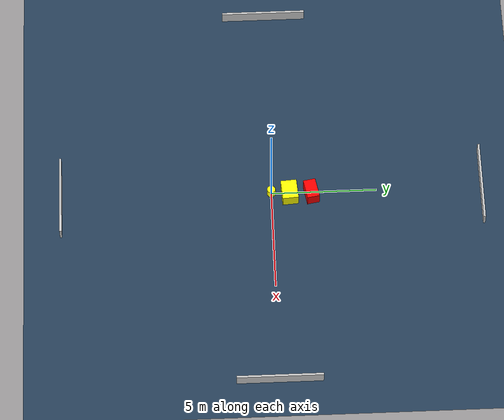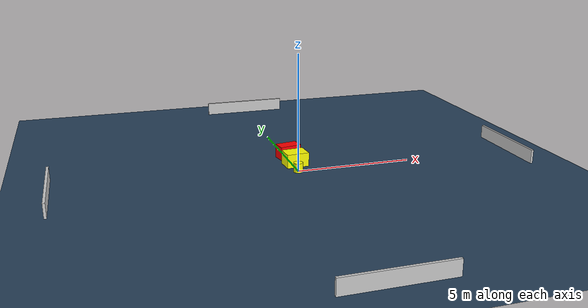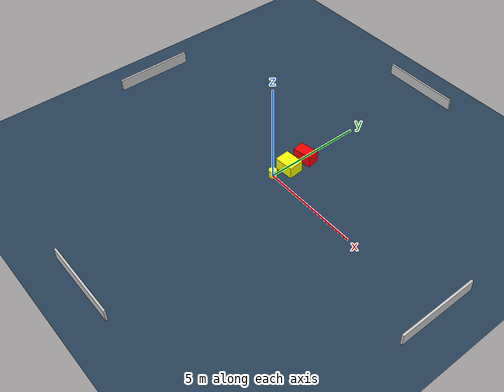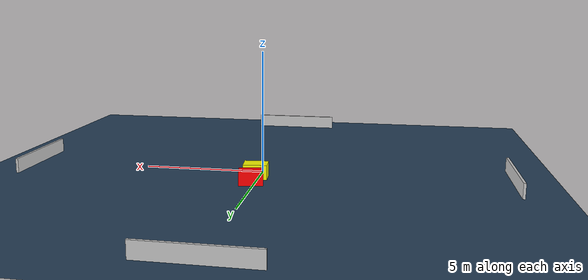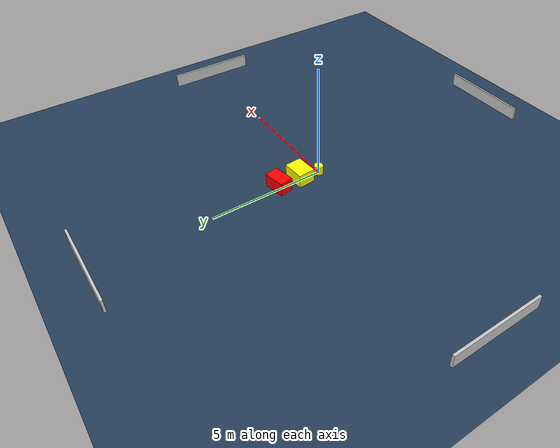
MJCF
<?xml version="1.0" ?>
<mujoco model="generated_environment">
  <option timestep="0.01" integrator="RK4" cone="elliptic"/>
  <default>
    <geom density="1"/>
  </default>
  <asset>
    <texture builtin="gradient" height="3072" name="skybox" rgb1="0.3 0.5 0.7" rgb2="0 0 0" type="skybox" width="512"/>
    <texture builtin="checker" height="300" name="groundplane" rgb1="0.2 0.3 0.4" rgb2="0.1 0.2 0.3" type="2d" width="300"/>
    <material name="groundplane" reflectance="0.2" texrepeat="5 5" texture="groundplane"/>
  </asset>
  <worldbody>
    <light dir="0 0 -1" directional="true" pos="0 0 1.5"/>
    <geom condim="3" friction="0.5 0.005 0.001" material="groundplane" name="floor" pos="0 0 0" size="0 0 0.05" type="plane"/>
    <body name="walls">
      <geom name="wall_1" condim="4" pos="-10.0 0.0 0.3" rgba="0.800000011920929 0.800000011920929 0.800000011920929 1.0" size="0.05 2.0 0.3" type="box"/>
      <geom name="wall_2" condim="4" pos="10.0 0.0 0.3" rgba="0.800000011920929 0.800000011920929 0.800000011920929 1.0" size="0.05 2.0 0.3" type="box"/>
      <geom name="wall_3" condim="4" pos="0.0 -10.0 0.3" rgba="0.800000011920929 0.800000011920929 0.800000011920929 1.0" size="2.0 0.05 0.3" type="box"/>
      <geom name="wall_4" condim="4" pos="0.0 10.0 0.3" rgba="0.800000011920929 0.800000011920929 0.800000011920929 1.0" size="2.0 0.05 0.3" type="box"/>
    </body>
    <body name="robot">
      <joint name="joint_x" type="slide" pos="0 0 0" axis="1 0 0"/>
      <joint name="joint_y" type="slide" pos="0 0 0" axis="0 1 0"/>
      <geom name="robot" type="cylinder" pos="0.0 0.0 0.2" size="0.2 0.2 0.0" mass="5.0" friction="1.0 0.005 0.0001" condim="4" rgba="1.0 1.0 0.0 1.0"/>
    </body>
    <body name="obstacle_1_movable">
      <geom name="obstacle_1_movable" condim="4" pos="0.12767916230318152 0.8642246402747593 0.3" euler="0 0 94.48366989837305" friction="0.0 0.005 0.001" rgba="1.0 1.0 0.0 1.0" size="0.37652369221727666 0.486735065781571 0.3" type="box" mass="0.1"/>
      <joint type="free"/>
    </body>
    <body name="obstacle_2_static">
      <geom name="obstacle_2_static" condim="4" pos="0.12213272957721746 1.8976288827620171 0.3" euler="0 0 280.2191134012992" friction="0.0 0.005 0.001" rgba="1.0 0.0 0.0 1.0" size="0.2930459958495835 0.4795451318462522 0.3" type="box"/>
    </body>
  </worldbody>
  <actuator>
    <motor name="actuator_x" joint="joint_x" gear="1" ctrlrange="-1 1"/>
    <motor name="actuator_y" joint="joint_y" gear="1" ctrlrange="-1 1"/>
  </actuator>
</mujoco>
